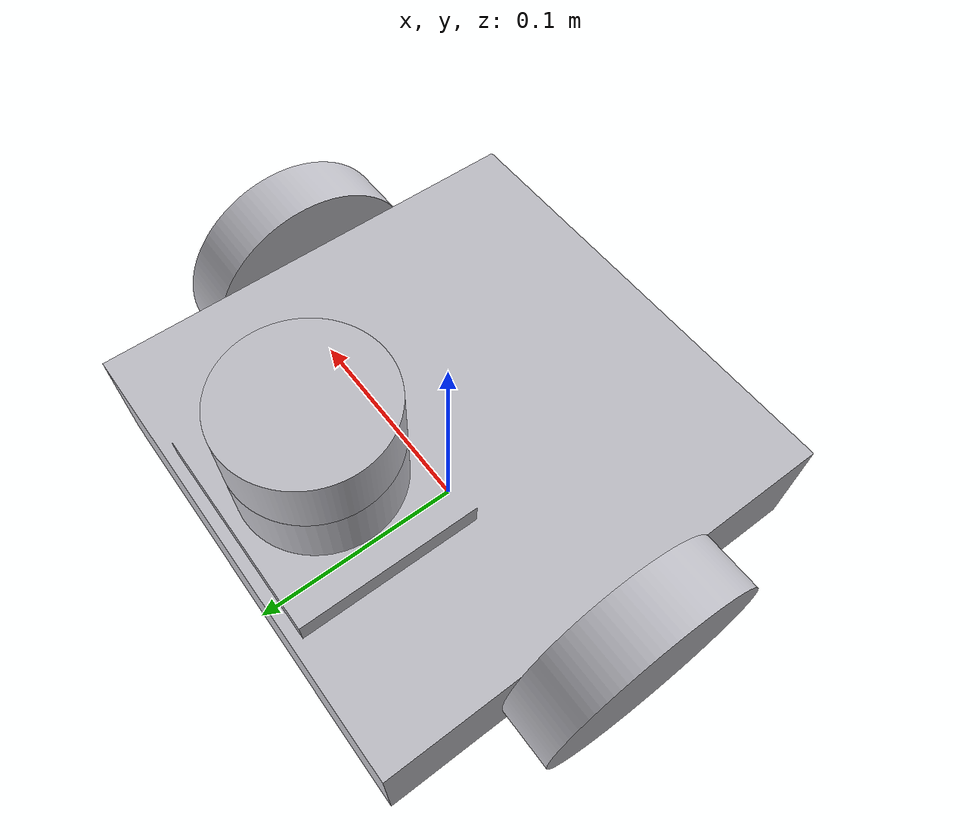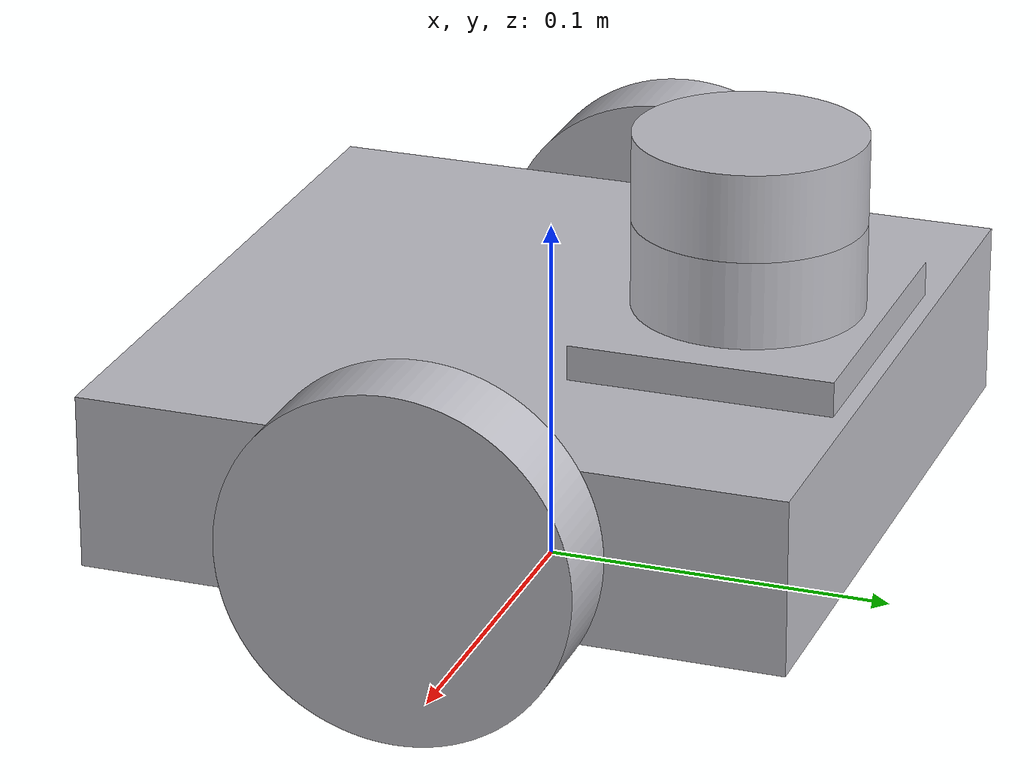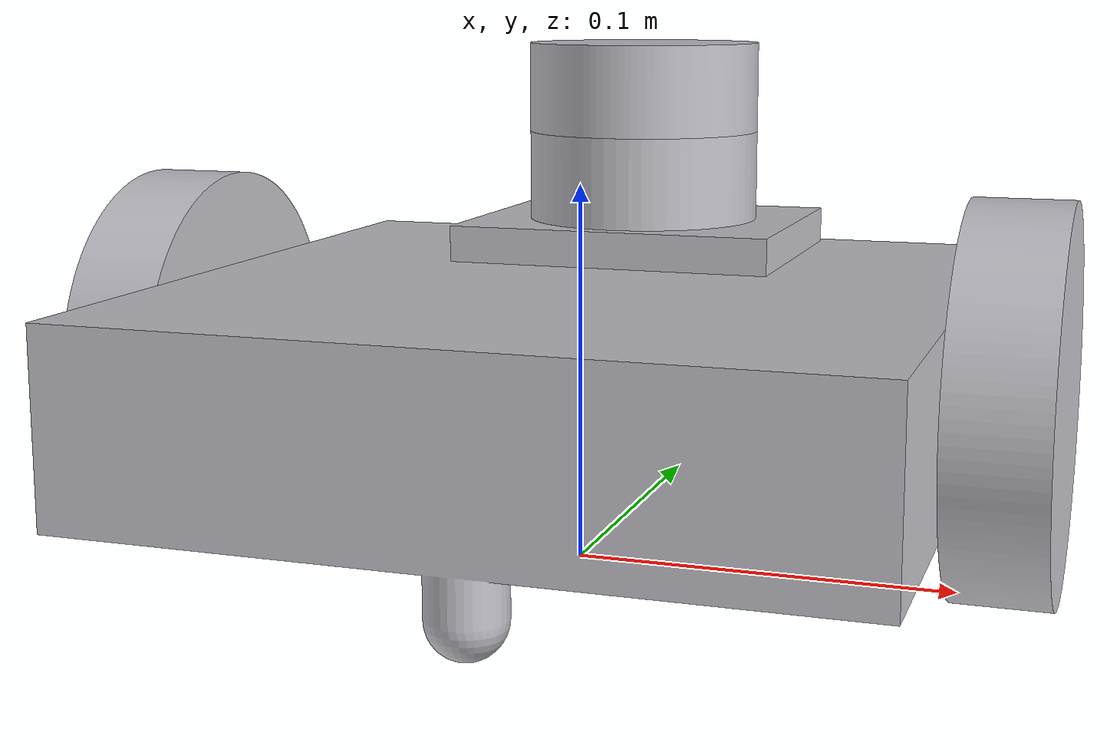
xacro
<?xml version="1.0" ?>
<robot name="mobile" xmlns:xacro="http://www.ros.org/wiki/xacro">

<xacro:include filename="$(find mobile_description)/urdf/materials.xacro" />
<xacro:include filename="$(find mobile_description)/urdf/mobile.trans" />
<xacro:include filename="$(find mobile_description)/urdf/mobile.gazebo" />
<link name="base_link">
  <inertial>
    <origin xyz="9.397724616986065e-06 0.003997522248212548 0.05253038110220505" rpy="0 0 0"/>
    <mass value="2.293915524124876"/>
    <inertia ixx="0.008426" iyy="0.007853" izz="0.014851" ixy="-1e-06" iyz="-0.000342" ixz="-1e-06"/>
  </inertial>
  <visual>
    <origin xyz="0 0 0" rpy="0 0 0"/>
    <geometry>
      <mesh filename="package://mobile_description/meshes/base_link.stl" scale="0.001 0.001 0.001"/>
    </geometry>
    <material name="silver"/>
  </visual>
  <collision>
    <origin xyz="0 0 0" rpy="0 0 0"/>
    <geometry>
      <mesh filename="package://mobile_description/meshes/base_link.stl" scale="0.001 0.001 0.001"/>
    </geometry>
  </collision>
</link>

<link name="right_wheel_1">
  <inertial>
    <origin xyz="0.012499999999999997 -2.506675422786486e-17 0.0" rpy="0 0 0"/>
    <mass value="0.1826050729899067"/>
    <inertia ixx="0.000228" iyy="0.000124" izz="0.000124" ixy="-0.0" iyz="0.0" ixz="-0.0"/>
  </inertial>
  <visual>
    <origin xyz="-0.1 0.0 -0.05" rpy="0 0 0"/>
    <geometry>
      <mesh filename="package://mobile_description/meshes/right_wheel_1.stl" scale="0.001 0.001 0.001"/>
    </geometry>
    <material name="silver"/>
  </visual>
  <collision>
    <origin xyz="-0.1 0.0 -0.05" rpy="0 0 0"/>
    <geometry>
      <mesh filename="package://mobile_description/meshes/right_wheel_1.stl" scale="0.001 0.001 0.001"/>
    </geometry>
  </collision>
</link>

<link name="left_wheel_1">
  <inertial>
    <origin xyz="-0.012499999999999997 -2.8900493109773606e-17 0.0" rpy="0 0 0"/>
    <mass value="0.1826050729899067"/>
    <inertia ixx="0.000228" iyy="0.000124" izz="0.000124" ixy="0.0" iyz="0.0" ixz="0.0"/>
  </inertial>
  <visual>
    <origin xyz="0.1 0.0 -0.05" rpy="0 0 0"/>
    <geometry>
      <mesh filename="package://mobile_description/meshes/left_wheel_1.stl" scale="0.001 0.001 0.001"/>
    </geometry>
    <material name="silver"/>
  </visual>
  <collision>
    <origin xyz="0.1 0.0 -0.05" rpy="0 0 0"/>
    <geometry>
      <mesh filename="package://mobile_description/meshes/left_wheel_1.stl" scale="0.001 0.001 0.001"/>
    </geometry>
  </collision>
</link>

<link name="lidar_1">
  <inertial>
    <origin xyz="2.878863235758586e-07 3.7140872612834164e-07 0.012500000000000011" rpy="0 0 0"/>
    <mass value="0.6512177959195152"/>
    <inertia ixx="0.000206" iyy="0.000206" izz="0.000344" ixy="0.0" iyz="0.0" ixz="-0.0"/>
  </inertial>
  <visual>
    <origin xyz="-0.000223 -0.057425 -0.11" rpy="0 0 0"/>
    <geometry>
      <mesh filename="package://mobile_description/meshes/lidar_1.stl" scale="0.001 0.001 0.001"/>
    </geometry>
    <material name="silver"/>
  </visual>
  <collision>
    <origin xyz="-0.000223 -0.057425 -0.11" rpy="0 0 0"/>
    <geometry>
      <mesh filename="package://mobile_description/meshes/lidar_1.stl" scale="0.001 0.001 0.001"/>
    </geometry>
  </collision>
</link>

<joint name="Revolute 1" type="continuous">
  <origin xyz="0.1 0.0 0.05" rpy="0 0 0"/>
  <parent link="base_link"/>
  <child link="right_wheel_1"/>
  <axis xyz="1.0 0.0 0.0"/>
</joint>

<joint name="Revolute 2" type="continuous">
  <origin xyz="-0.1 0.0 0.05" rpy="0 0 0"/>
  <parent link="base_link"/>
  <child link="left_wheel_1"/>
  <axis xyz="-1.0 0.0 0.0"/>
</joint>

<joint name="Rigid 3" type="fixed">
  <origin xyz="0.000223 0.057425 0.11" rpy="0 0 0"/>
  <parent link="base_link"/>
  <child link="lidar_1"/>
</joint>

</robot>

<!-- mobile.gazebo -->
<robot name="mobile" xmlns:xacro="http://www.ros.org/wiki/xacro" >

<xacro:property name="body_color" value="Gazebo/Silver" />

<gazebo>
  <plugin name="control" filename="libgazebo_ros_control.so"/>
</gazebo>
<gazebo reference="base_link">
  <material>${body_color}</material>
  <mu1>0.2</mu1>
  <mu2>0.2</mu2>
  <selfCollide>true</selfCollide>
  <gravity>true</gravity>
</gazebo>

<gazebo reference="right_wheel_1">
  <material>${body_color}</material>
  <mu1>0.2</mu1>
  <mu2>0.2</mu2>
  <selfCollide>true</selfCollide>
</gazebo>

<gazebo reference="left_wheel_1">
  <material>${body_color}</material>
  <mu1>0.2</mu1>
  <mu2>0.2</mu2>
  <selfCollide>true</selfCollide>
</gazebo>

<gazebo reference="lidar_1">
  <material>${body_color}</material>
  <mu1>0.2</mu1>
  <mu2>0.2</mu2>
  <selfCollide>true</selfCollide>
</gazebo>

</robot>
